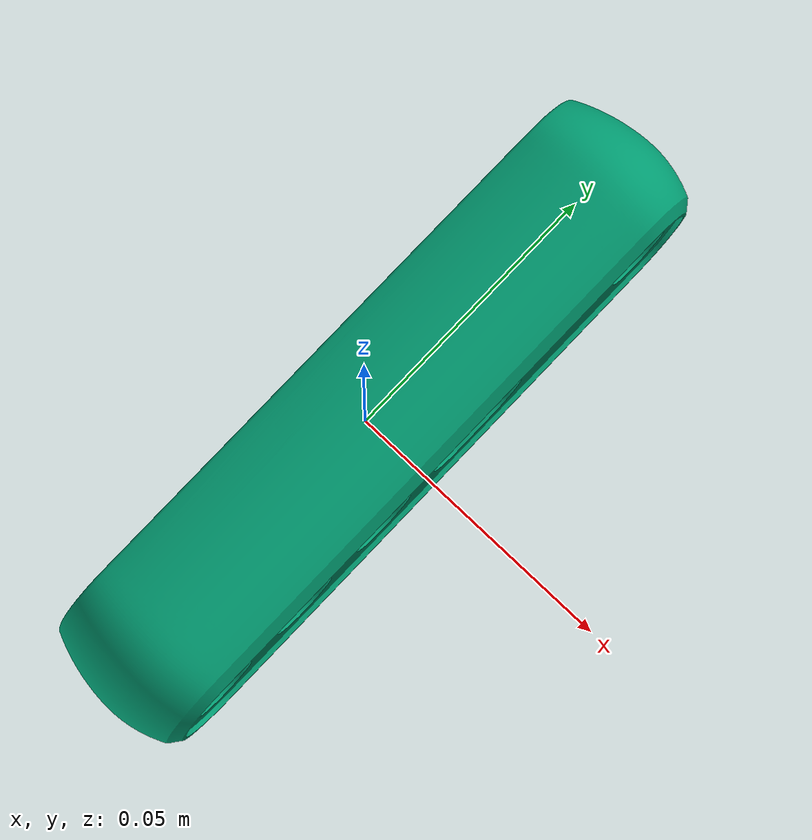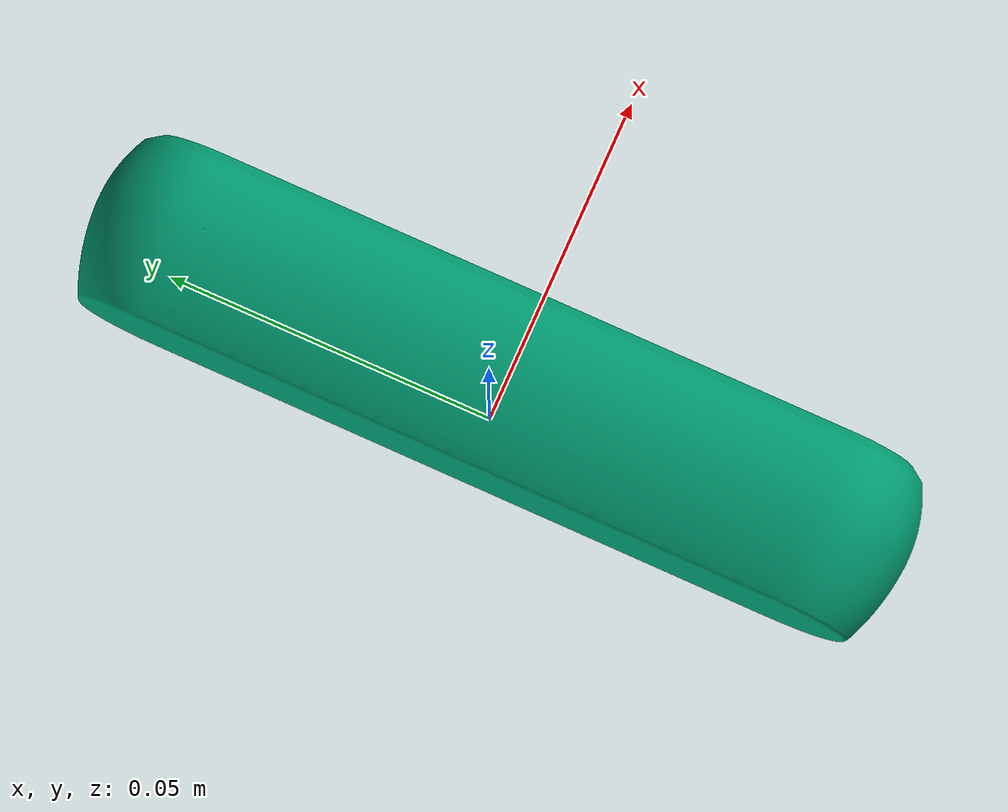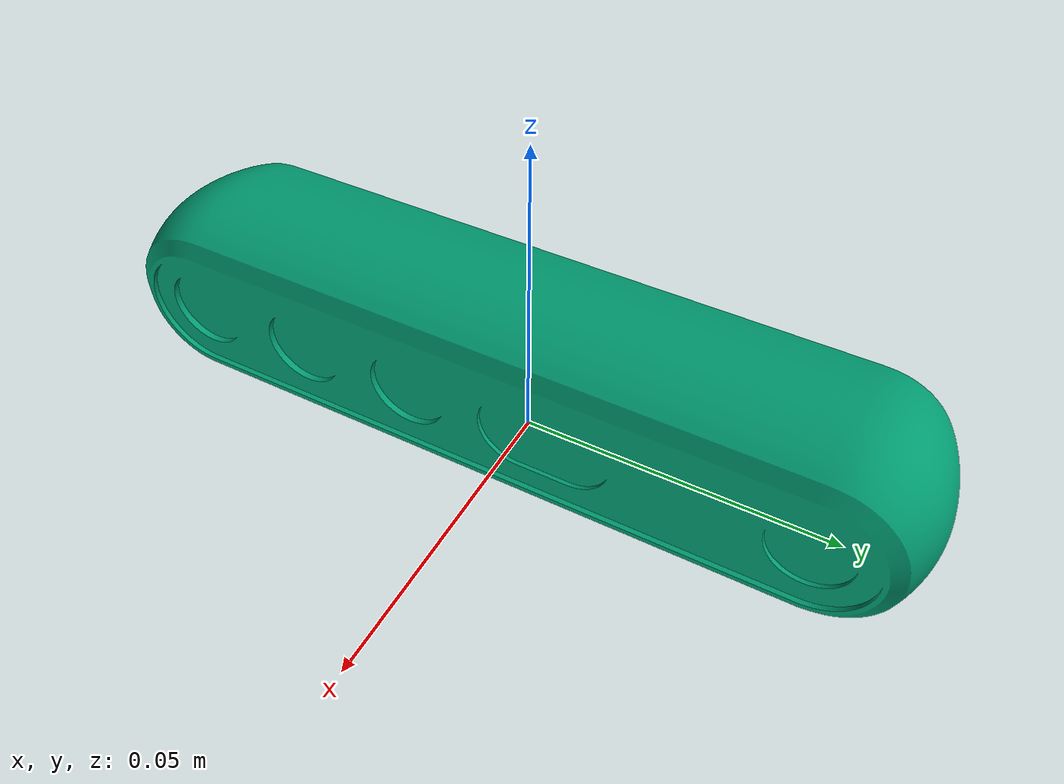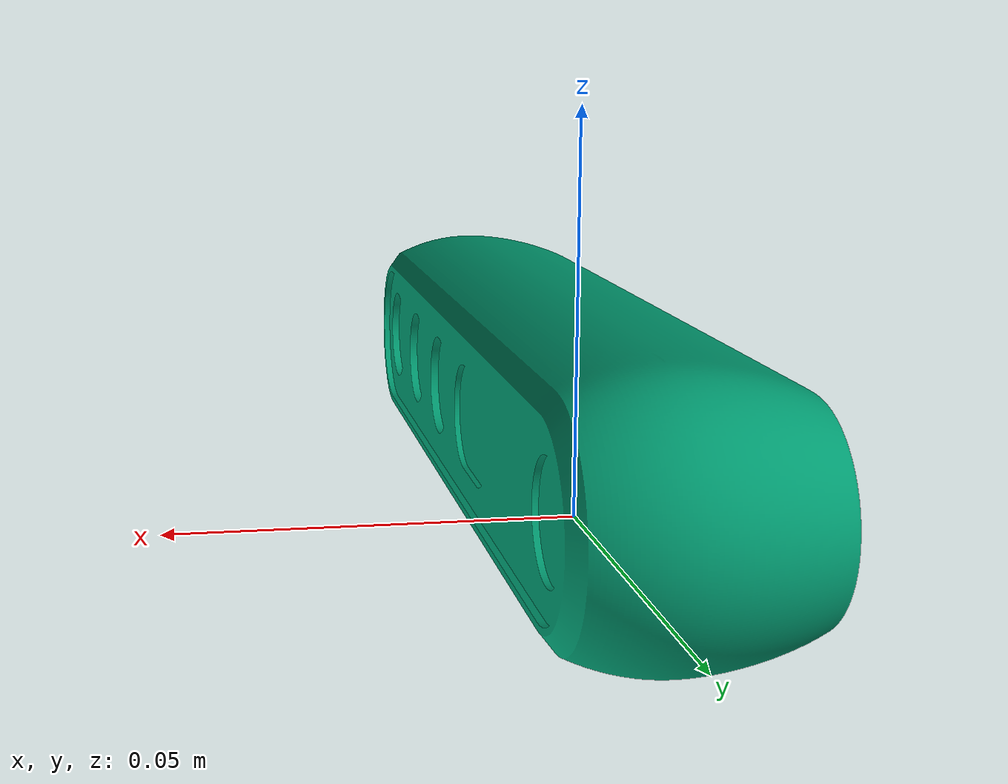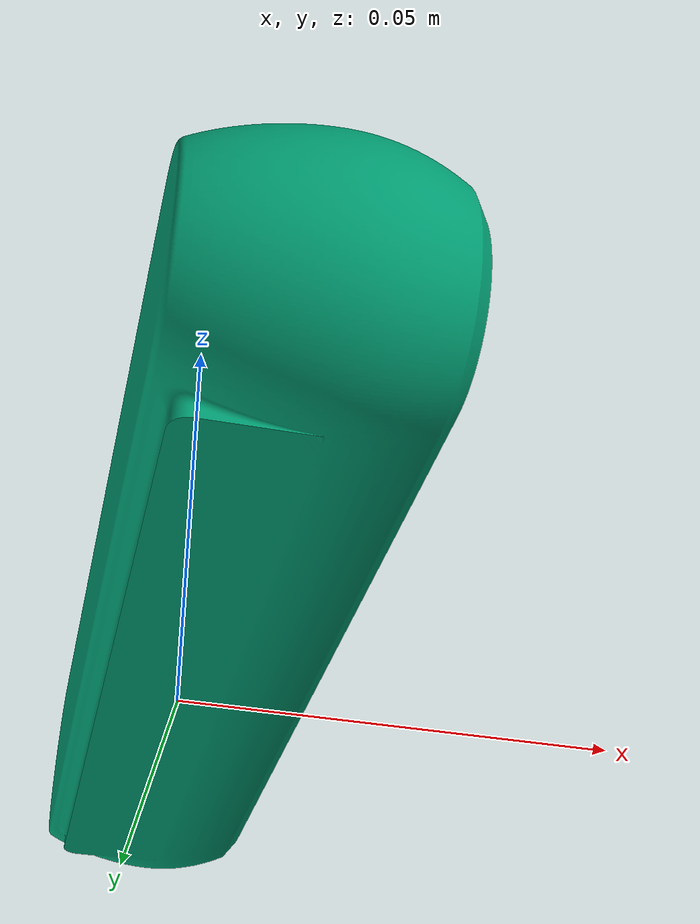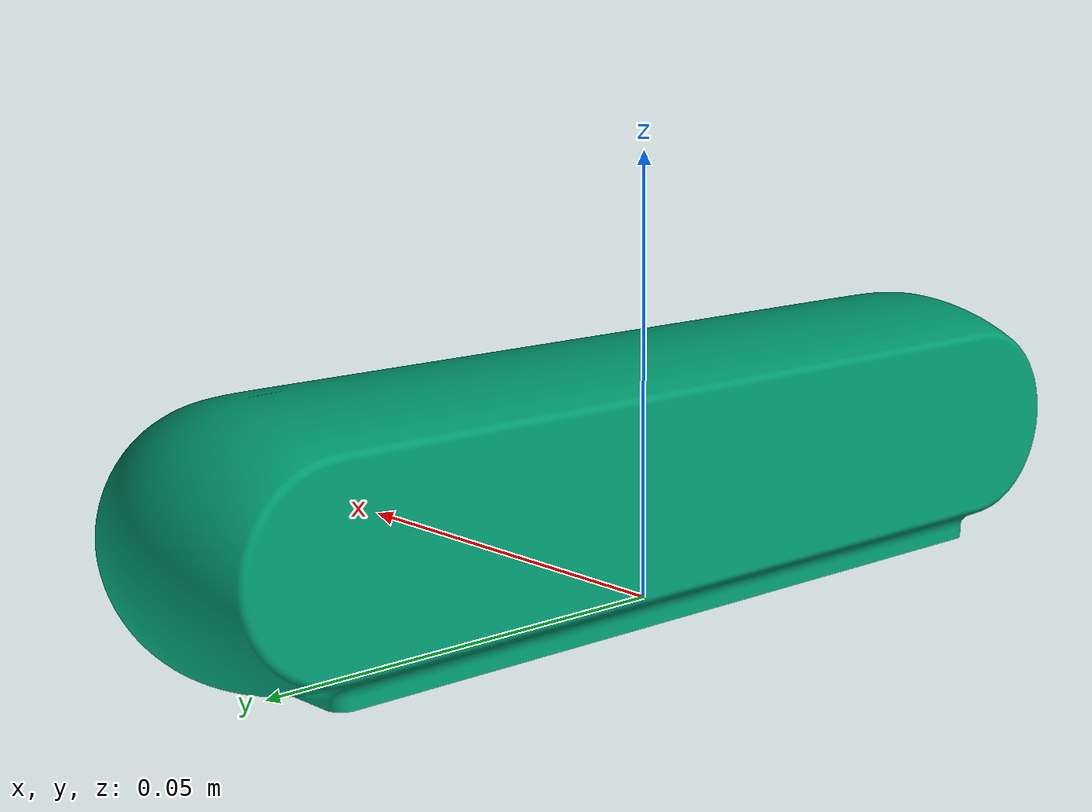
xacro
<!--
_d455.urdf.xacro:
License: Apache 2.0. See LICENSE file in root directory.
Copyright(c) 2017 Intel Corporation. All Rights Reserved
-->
<?xml version="1.0"?>
<robot name="realsense2_camera" xmlns:xacro="http://ros.org/wiki/xacro">
  <xacro:arg name="use_nominal_extrinsics" default="false"/>
  <xacro:include filename="$(find realsense2_description)/urdf/_d455.urdf.xacro" />

  <link name="base_link" />
  <xacro:sensor_d455 parent="base_link" use_nominal_extrinsics="$(arg use_nominal_extrinsics)">
    <origin xyz="0 0 0" rpy="0 0 0"/>
  </xacro:sensor_d455>
</robot>

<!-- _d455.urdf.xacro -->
<robot name="sensor_d455" xmlns:xacro="http://ros.org/wiki/xacro">
  <!-- Includes -->
  <xacro:include filename="$(find realsense2_description)/urdf/_materials.urdf.xacro" />
  <xacro:include filename="$(find realsense2_description)/urdf/_usb_plug.urdf.xacro" />

  <xacro:macro name="sensor_d455" params="parent *origin name:=camera use_nominal_extrinsics:=false">
    <xacro:arg name="add_plug" default="false" />
    <xacro:property name="M_PI" value="3.1415926535897931" />

    <!-- The following values are approximate, and the camera node
     publishing TF values with actual calibrated camera extrinsic values -->
    <xacro:property name="d455_cam_depth_to_infra1_offset" value="0.0"/>
    <xacro:property name="d455_cam_depth_to_infra2_offset" value="-0.095"/>
    <xacro:property name="d455_cam_depth_to_color_offset" value="-0.059"/>

    <!-- The following values model the aluminum peripherial case for the
  	d455 camera, with the camera joint represented by the actual
  	peripherial camera tripod mount -->
    <xacro:property name="d455_cam_width" value="0.124"/>
    <xacro:property name="d455_cam_height" value="0.029"/>
    <xacro:property name="d455_cam_depth" value="0.026"/>
    <xacro:property name="d455_cam_mount_from_center_offset" value="0.0158"/>
    <!-- glass cover is 0.1 mm inwards from front aluminium plate -->
    <xacro:property name="d455_glass_to_front" value="0.1e-3"/>
    <!-- see datasheet Revision 009, Fig. 4-4 page 68 -->
    <xacro:property name="d455_zero_depth_to_glass" value="4.55e-3"/>
    <!-- convenience precomputation to avoid clutter-->
    <xacro:property name="d455_mesh_x_offset" value="${d455_cam_mount_from_center_offset-d455_glass_to_front-d455_zero_depth_to_glass}"/>

    <!-- The following offset is relative to the physical d455 camera peripherial
  	camera tripod mount -->
    <xacro:property name="d455_cam_depth_px" value="${d455_cam_mount_from_center_offset}"/>
    <xacro:property name="d455_cam_depth_py" value="0.0475"/>
    <xacro:property name="d455_cam_depth_pz" value="${d455_cam_height/2}"/>

    <!-- camera body, with origin at bottom screw mount -->
    <joint name="${name}_joint" type="fixed">
      <xacro:insert_block name="origin" />
      <parent link="${parent}"/>
      <child link="${name}_bottom_screw_frame" />
    </joint>
    <link name="${name}_bottom_screw_frame"/>

    <joint name="${name}_link_joint" type="fixed">
      <origin xyz="${d455_mesh_x_offset} ${d455_cam_depth_py} ${d455_cam_depth_pz}" rpy="0 0 0"/>
      <parent link="${name}_bottom_screw_frame"/>
      <child link="${name}_link" />
    </joint>

    <link name="${name}_link">
      <visual>
        <!-- the mesh origin is at front plate in between the two infrared camera axes -->
        <origin xyz="${d455_zero_depth_to_glass + d455_glass_to_front} ${-d455_cam_depth_py} 0" rpy="${M_PI/2} 0 ${M_PI/2}"/>
        <geometry>
	        <mesh filename="package://realsense2_description/meshes/d455.stl" scale="0.001 0.001 0.001" />
        </geometry>
        <material name="aluminum"/>
      </visual>
      <collision>
        <origin xyz="${d455_zero_depth_to_glass-d455_cam_depth/2} ${-d455_cam_depth_py} 0" rpy="0 0 0"/>
        <geometry>
          <box size="${d455_cam_depth} ${d455_cam_width} ${d455_cam_height}"/>
        </geometry>
      </collision>
      <inertial>
        <!-- The following are not reliable values, and should not be used for modeling -->
        <mass value="0.072" />
        <origin xyz="0 0 0" />
        <inertia ixx="0.003881243" ixy="0.0" ixz="0.0" iyy="0.000498940" iyz="0.0" izz="0.003879257" />
      </inertial>
    </link>

    <!-- Use the nominal extrinsics between camera frames if the calibrated extrinsics aren't being published. e.g. running the device in simulation  -->
    <xacro:if value="${use_nominal_extrinsics}">
      <!-- camera depth joints and links -->
      <joint name="${name}_depth_joint" type="fixed">
        <origin xyz="0 0 0" rpy="0 0 0"/>
        <parent link="${name}_link"/>
        <child link="${name}_depth_frame" />
      </joint>
      <link name="${name}_depth_frame"/>

      <joint name="${name}_depth_optical_joint" type="fixed">
        <origin xyz="0 0 0" rpy="${-M_PI/2} 0 ${-M_PI/2}" />
        <parent link="${name}_depth_frame" />
        <child link="${name}_depth_optical_frame" />
      </joint>
      <link name="${name}_depth_optical_frame"/>

      <!-- camera left IR joints and links -->
      <joint name="${name}_infra1_joint" type="fixed">
        <origin xyz="0 ${d455_cam_depth_to_infra1_offset} 0" rpy="0 0 0" />
        <parent link="${name}_link" />
        <child link="${name}_infra1_frame" />
      </joint>
      <link name="${name}_infra1_frame"/>

      <joint name="${name}_infra1_optical_joint" type="fixed">
        <origin xyz="0 0 0" rpy="${-M_PI/2} 0 ${-M_PI/2}" />
        <parent link="${name}_infra1_frame" />
        <child link="${name}_infra1_optical_frame" />
      </joint>
      <link name="${name}_infra1_optical_frame"/>

      <!-- camera right IR joints and links -->
      <joint name="${name}_infra2_joint" type="fixed">
        <origin xyz="0 ${d455_cam_depth_to_infra2_offset} 0" rpy="0 0 0" />
        <parent link="${name}_link" />
        <child link="${name}_infra2_frame" />
      </joint>
      <link name="${name}_infra2_frame"/>

      <joint name="${name}_infra2_optical_joint" type="fixed">
        <origin xyz="0 0 0" rpy="${-M_PI/2} 0 ${-M_PI/2}" />
        <parent link="${name}_infra2_frame" />
        <child link="${name}_infra2_optical_frame" />
      </joint>
      <link name="${name}_infra2_optical_frame"/>

      <!-- camera color joints and links -->
      <joint name="${name}_color_joint" type="fixed">
        <origin xyz="0 ${d455_cam_depth_to_color_offset} 0" rpy="0 0 0" />
        <parent link="${name}_link" />
        <child link="${name}_color_frame" />
      </joint>
      <link name="${name}_color_frame"/>

      <joint name="${name}_color_optical_joint" type="fixed">
        <origin xyz="0 0 0" rpy="${-M_PI/2} 0 ${-M_PI/2}" />
        <parent link="${name}_color_frame" />
        <child link="${name}_color_optical_frame" />
      </joint>
      <link name="${name}_color_optical_frame"/>

      <!-- IMU -->
      <!-- see datasheet Revision 009, page 114 -->
      <xacro:property name="d455_imu_px" value="-0.01602"/>
      <xacro:property name="d455_imu_py" value="-0.03022"/>
      <xacro:property name="d455_imu_pz" value="+0.0074"/>

      <link name="${name}_accel_frame" />
      <link name="${name}_accel_optical_frame" />
      <link name="${name}_gyro_frame" />
      <link name="${name}_gyro_optical_frame" />
      <link name="${name}_imu_optical_frame" />

      <joint name="${name}_accel_joint" type="fixed">
        <origin xyz = "${d455_imu_px} ${d455_imu_py} ${d455_imu_pz}" rpy = "0 0 0" />
        <parent link="${name}_link" />
        <child link="${name}_accel_frame" />
      </joint>

      <joint name="${name}_accel_optical_joint" type="fixed">
        <origin xyz = "0 0 0" rpy = "${-M_PI/2} 0 ${-M_PI/2}" />
        <parent link="${name}_accel_frame" />
        <child link="${name}_accel_optical_frame" />
      </joint>

      <joint name="${name}_gyro_joint" type="fixed">
        <origin xyz = "${d455_imu_px} ${d455_imu_py} ${d455_imu_pz}" rpy = "0 0 0" />
        <parent link="${name}_link" />
        <child link="${name}_gyro_frame" />
      </joint>

      <joint name="${name}_gyro_optical_joint" type="fixed">
        <origin xyz = "0 0 0" rpy = "${-M_PI/2} 0 ${-M_PI/2}" />
        <parent link="${name}_gyro_frame" />
        <child link="${name}_gyro_optical_frame" />
      </joint>

      <joint name="${name}_imu_optical_joint" type="fixed">
        <origin xyz = "0 0 0" rpy = "0 0 0" />
        <parent link="${name}_gyro_optical_frame" />
        <child link="${name}_imu_optical_frame" />
      </joint>
    </xacro:if>

    <xacro:if value="$(arg add_plug)">
      <xacro:usb_plug parent="${name}_link" name="${name}_usb_plug">
        <origin xyz="${-0.00406-d455_cam_depth_px} ${-0.03701-d455_cam_depth_py} ${-d455_cam_depth_pz}" rpy="${M_PI/2} 0 0"/>
      </xacro:usb_plug>
    </xacro:if>
  </xacro:macro>
</robot>
